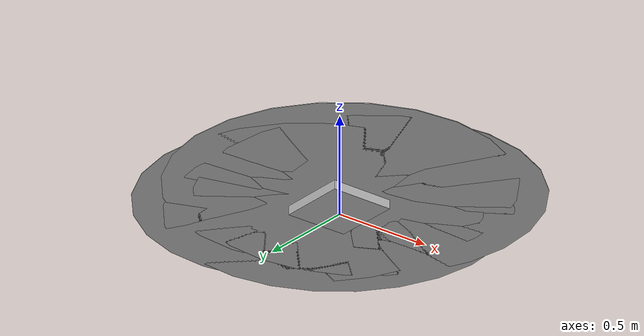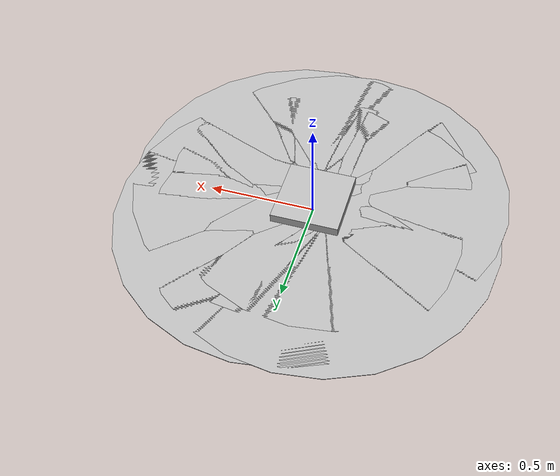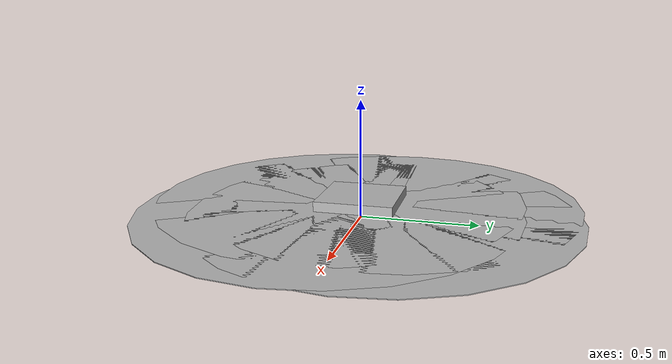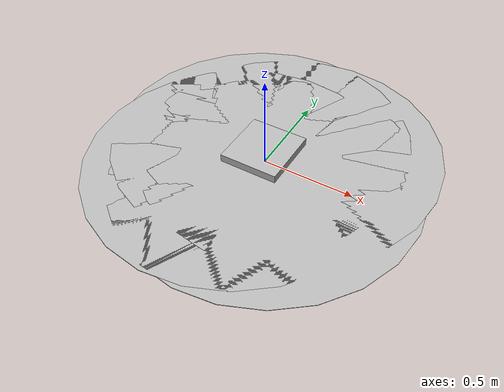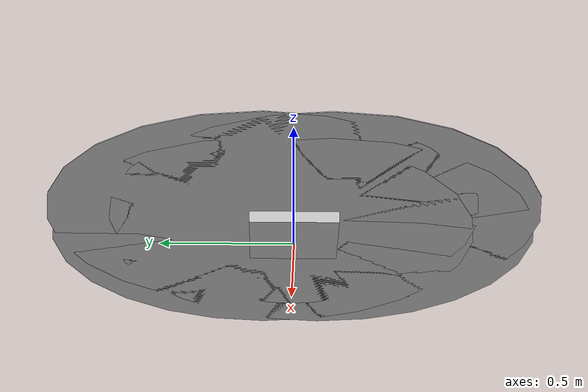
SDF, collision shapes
<?xml version="1.0"?>
<sdf version="1.6">
  <model name="parrot_bebop_2">
    <static>false</static>
    <pose>0 0 0.062656 0 0 0</pose>

    <!-- Main link -->
    <link name="body">
      <pose frame=''>0 0 0 0 -0 0</pose>
      <!-- Inertial properties of the model -->
      <inertial>
        <pose frame=''>0 0 0 0 -0 0</pose>
        <mass>0.503</mass> <!-- kg -->
        <inertia> <!-- kg.m^2 -->
          <ixx>1.805e-3</ixx>
          <ixy>-8.619e-7</ixy>
          <iyy>1.764e-3</iyy>
          <ixz>1.555e-5</ixz>
          <iyz>3.595e-7</iyz>
          <izz>3.328e-3</izz>
        </inertia>
        <pose>0 0 0 0 0 0</pose>
      </inertial>

      <!-- Collision properties of the model -->
    <collision name="body_inertia_collision">
      <pose>-0.00424 0.00014 -0.00595 0 0 0</pose>
      <geometry>
        <box><size>0.316618 0.330564 0.089582</size></box>
      </geometry>
      <max_contacts>10</max_contacts>
      <surface>
        <bounce>
          <restitution_coefficient>0.5</restitution_coefficient>
          <threshold>0.001</threshold>
        </bounce>
        <friction>
          <ode>
            <mu>0.8</mu>
            <mu2>0.6</mu2>
            <fdir1>0 0 0</fdir1>
            <slip1>0.0</slip1>
            <slip2>0.0</slip2>
          </ode>
        </friction>
        <contact>
          <ode>
            <kp>10000.0</kp>
            <kd>50.0</kd>
            <max_vel>0.1</max_vel>
            <min_depth>0.0001</min_depth>
          </ode>
        </contact>
      </surface>
    </collision>

      <!-- Visual representation of the model -->
      <visual name="body_inertia_visual">
        <pose frame=''>0 0 0 0 -0 0</pose>
        <geometry>
          <mesh>
              <uri>model://parrot_bebop_2/meshes/hull.dae</uri>
          </mesh>
        </geometry>
      </visual>
    </link>

    <!-- Cámara RGB normal para Bebop 2 -->
    <link name="rgb_camera_link">
      <pose>0.113 0 0 0 0 0</pose>

      <!-- Definir una inercia mínima para evitar problemas en Gazebo -->
      <inertial>
        <mass>1e-6</mass>  <!-- Masa casi cero para evitar problemas en la simulación -->
        <inertia>
          <ixx>1e-6</ixx>
          <iyy>1e-6</iyy>
          <izz>1e-6</izz>
        </inertia>
      </inertial>

      <!-- Sensor de cámara -->
      <sensor name="rgb_camera_sensor" type="camera">
        <always_on>1</always_on>
        <update_rate>15</update_rate>
        <camera>
          <horizontal_fov>1.2</horizontal_fov>
          <image>
            <width>640</width>
            <height>480</height>
            <format>R8G8B8</format>
          </image>
          <clip>
            <near>0.1</near>
            <far>20</far>
          </clip>
        </camera>
        <visualize>false</visualize>
      </sensor>
    </link>

    <!-- Articulación fija para la cámara -->
    <joint name="rgb_camera_joint" type="fixed">
      <parent>body</parent>
      <child>rgb_camera_link</child>
      <pose>0 0 0 0 0 0</pose>
    </joint>

    <link name='propeller_rr'>
      <pose frame=''>-0.09035 -0.11423 -0.00501 0 0 0</pose>
      <inertial>
        <pose frame=''>0 0 0 0 -0 0</pose>
        <mass>0.005</mass>
        <inertia>
          <ixx>9.75e-07</ixx>
          <ixy>0</ixy>
          <ixz>0</ixz>
          <iyy>4.17041e-05</iyy>
          <iyz>0</iyz>
          <izz>4.26041e-05</izz>
        </inertia>
      </inertial>
      <!-- collision -->
      <collision name='propeller_rr_collision'>
        <pose frame=''>0 0 0 0 -0 0</pose>
        <geometry>
          <cylinder>
            <length>0.003</length>
            <radius>0.8</radius>
          </cylinder>
        </geometry>
        <surface>
          <contact>
            <ode/>
          </contact>
          <friction>
            <ode/>
          </friction>
        </surface>
      </collision>
      <!-- Visual representation of the rear right propeller -->
      <visual name="propeller_rr_visual">
        <pose frame=''>0 0 0 0 -0 0</pose>
        <geometry>
          <mesh>
            <uri>model://parrot_bebop_2/meshes/propeller_rr.dae</uri>
          </mesh>
        </geometry>
      </visual>
    </link>

    <joint name='propeller_rr_joint' type='revolute'>
      <child>propeller_rr</child>
      <parent>body</parent>
      <axis>
        <xyz>0 0 1</xyz>
        <limit>
          <lower>-1e+16</lower>
          <upper>1e+16</upper> <!-- Velocidad máxima en rad/s -->
        </limit>
        <dynamics>
          <damping>0.01</damping> <!-- Amortiguación del motor -->
          <friction>0.001</friction> <!-- Fricción del motor -->
        </dynamics>
      </axis>
    </joint>

    <link name='propeller_rl'>
      <pose frame=''>-0.09035 0.11452 -0.00501 0 0 0</pose>
      <inertial>
        <pose frame=''>0 0 0 0 -0 0</pose>
        <mass>0.005</mass>
        <inertia>
          <ixx>9.75e-07</ixx>
          <ixy>0</ixy>
          <ixz>0</ixz>
          <iyy>4.17041e-05</iyy>
          <iyz>0</iyz>
          <izz>4.26041e-05</izz>
        </inertia>
      </inertial>
      <!-- collision -->
      <collision name='propeller_rl_collision'>
        <pose frame=''>0 0 0 0 -0 0</pose>
        <geometry>
          <cylinder>
            <length>0.003</length>
            <radius>0.8</radius>
          </cylinder>
        </geometry>
        <surface>
          <contact>
            <ode/>
          </contact>
          <friction>
            <ode/>
          </friction>
        </surface>
      </collision>
      <!-- Visual representation of the rear right propeller -->
      <visual name="propeller_rl_visual">
        <pose frame=''>0 0 0 0 -0 0</pose>
        <geometry>
          <mesh>
            <uri>model://parrot_bebop_2/meshes/propeller_rl.dae</uri>
          </mesh>
        </geometry>
      </visual>
    </link>

    <joint name='propeller_rl_joint' type='revolute'>
      <child>propeller_rl</child>
      <parent>body</parent>
      <axis>
        <xyz>0 0 1</xyz>
        <limit>
          <lower>-1e+16</lower>
          <upper>1e+16</upper> <!-- Velocidad máxima en rad/s -->
        </limit>
        <dynamics>
          <damping>0.01</damping> <!-- Amortiguación del motor -->
          <friction>0.001</friction> <!-- Fricción del motor -->
        </dynamics>
      </axis>
    </joint>

    <link name='propeller_fr'>
      <pose frame=''>0.08456 -0.11435 -0.00501 0 0 0</pose>
      <inertial>
        <pose frame=''>0 0 0 0 -0 0</pose>
        <mass>0.005</mass>
        <inertia>
          <ixx>9.75e-07</ixx>
          <ixy>0</ixy>
          <ixz>0</ixz>
          <iyy>4.17041e-05</iyy>
          <iyz>0</iyz>
          <izz>4.26041e-05</izz>
        </inertia>
      </inertial>
      <!-- collision -->
      <collision name='propeller_fr_collision'>
        <pose frame=''>0 0 0 0 -0 0</pose>
        <geometry>
          <cylinder>
            <length>0.003</length>
            <radius>0.8</radius>
          </cylinder>
        </geometry>
        <surface>
          <contact>
            <ode/>
          </contact>
          <friction>
            <ode/>
          </friction>
        </surface>
      </collision>
      <!-- Visual representation of the rear right propeller -->
      <visual name="propeller_fr_visual">
        <pose frame=''>0 0 0 0 -0 0</pose>
        <geometry>
          <mesh>
            <uri>model://parrot_bebop_2/meshes/propeller_fr.dae</uri>
          </mesh>
        </geometry>
      </visual>
    </link>

    <joint name='propeller_fr_joint' type='revolute'>
      <child>propeller_fr</child>
      <parent>body</parent>
      <axis>
        <xyz>0 0 1</xyz>
        <limit>
          <lower>-1e+16</lower>
          <upper>1e+16</upper> <!-- Velocidad máxima en rad/s -->
        </limit>
        <dynamics>
          <damping>0.01</damping> <!-- Amortiguación del motor -->
          <friction>0.001</friction> <!-- Fricción del motor -->
        </dynamics>
      </axis>
    </joint>

    <link name='propeller_fl'>
      <pose frame=''>0.08456 0.11463 -0.00501 0 0 0</pose>
      <inertial>
        <pose frame=''>0 0 0 0 -0 0</pose>
        <mass>0.005</mass>
        <inertia>
          <ixx>9.75e-07</ixx>
          <ixy>0</ixy>
          <ixz>0</ixz>
          <iyy>4.17041e-05</iyy>
          <iyz>0</iyz>
          <izz>4.26041e-05</izz>
        </inertia>
      </inertial>
      <!-- collision -->
      <collision name='propeller_fl_collision'>
        <pose frame=''>0 0 0 0 -0 0</pose>
        <geometry>
          <cylinder>
            <length>0.003</length>
            <radius>0.8</radius>
          </cylinder>
        </geometry>
        <surface>
          <contact>
            <ode/>
          </contact>
          <friction>
            <ode/>
          </friction>
        </surface>
      </collision>
      <!-- Visual representation of the rear right propeller -->
      <visual name="propeller_fl_visual">
        <pose frame=''>0 0 0 0 -0 0</pose>
        <geometry>
          <mesh>
            <uri>model://parrot_bebop_2/meshes/propeller_fl.dae</uri>
          </mesh>
        </geometry>
      </visual>
    </link>

    <joint name='propeller_fl_joint' type='revolute'>
      <child>propeller_fl</child>
      <parent>body</parent>
      <axis>
        <xyz>0 0 1</xyz>
        <limit>
          <lower>-1e+16</lower>
          <upper>1e+16</upper> <!-- Velocidad máxima en rad/s -->
        </limit>
        <dynamics>
          <damping>0.01</damping> <!-- Amortiguación del motor -->
          <friction>0.001</friction> <!-- Fricción del motor -->
        </dynamics>
      </axis>
    </joint>
  </model>
</sdf>
